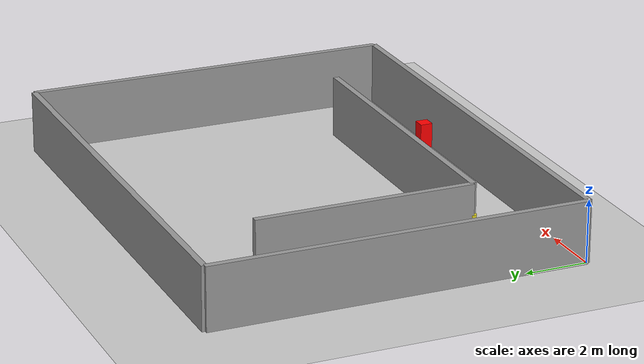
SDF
<?xml version="1.0" ?>
<sdf version="1.6">
  <world name="indoor_standard_world">
    <include><uri>model://sun</uri></include>
    <include><uri>model://ground_plane</uri></include>

    <model name='enclosure'>
      <static>1</static>
      <link name='link'>
        <visual name='north'><pose>7.5 12 1 0 0 0</pose><geometry><box><size>15 0.2 2</size></box></geometry>
          <material><script><uri>file://media/materials/scripts/gazebo.material</uri><name>Gazebo/Grey</name></script></material></visual>
        <collision name='north_c'><pose>7.5 12 1 0 0 0</pose><geometry><box><size>15 0.2 2</size></box></geometry></collision>

        <visual name='south'><pose>7.5 0 1 0 0 0</pose><geometry><box><size>15 0.2 2</size></box></geometry>
          <material><script><uri>file://media/materials/scripts/gazebo.material</uri><name>Gazebo/Grey</name></script></material></visual>
        <collision name='south_c'><pose>7.5 0 1 0 0 0</pose><geometry><box><size>15 0.2 2</size></box></geometry></collision>

        <visual name='west'><pose>0 6 1 0 0 1.57</pose><geometry><box><size>12 0.2 2</size></box></geometry>
          <material><script><uri>file://media/materials/scripts/gazebo.material</uri><name>Gazebo/Grey</name></script></material></visual>
        <collision name='west_c'><pose>0 6 1 0 0 1.57</pose><geometry><box><size>12 0.2 2</size></box></geometry></collision>

        <visual name='east'><pose>15 6 1 0 0 1.57</pose><geometry><box><size>12 0.2 2</size></box></geometry>
          <material><script><uri>file://media/materials/scripts/gazebo.material</uri><name>Gazebo/Grey</name></script></material></visual>
        <collision name='east_c'><pose>15 6 1 0 0 1.57</pose><geometry><box><size>12 0.2 2</size></box></geometry></collision>
      </link>
    </model>

    <model name='inner_L_wall'>
      <static>1</static>
      <pose>2.5 2.5 0 0 0 0</pose>
      <link name='link'>
        <visual name='v1'><pose>5 0 1 0 0 0</pose><geometry><box><size>10 0.2 2</size></box></geometry>
          <material><script><uri>file://media/materials/scripts/gazebo.material</uri><name>Gazebo/Grey</name></script></material></visual>
        <collision name='c1'><pose>5 0 1 0 0 0</pose><geometry><box><size>10 0.2 2</size></box></geometry></collision>

        <visual name='v2'><pose>0 3.5 1 0 0 1.57</pose><geometry><box><size>7 0.2 2</size></box></geometry>
          <material><script><uri>file://media/materials/scripts/gazebo.material</uri><name>Gazebo/Grey</name></script></material></visual>
        <collision name='c2'><pose>0 3.5 1 0 0 1.57</pose><geometry><box><size>7 0.2 2</size></box></geometry></collision>
      </link>
    </model>

    <model name='corner_pole'>
      <static>1</static>
      <pose>2.5 2.5 0 0 0 0</pose>
      <link name='pole'><pose>0 0 0.5 0 0 0</pose><visual name='v'><geometry><cylinder><radius>0.12</radius><length>1</length></cylinder></geometry>
        <material><script><uri>file://media/materials/scripts/gazebo.material</uri><name>Gazebo/Yellow</name></script></material></visual>
        <collision name='c'><geometry><cylinder><radius>0.12</radius><length>1</length></cylinder></geometry></collision>
      </link>
    </model>
    <model name="dynamic_box">
      <pose>10.0 0.5 0.5 0 0 0</pose>
      <link name="link">
        <inertial>
          <mass>1.0</mass>
          <inertia>
            <ixx>0.1</ixx><ixy>0</ixy><ixz>0</ixz><iyy>0.1</iyy><iyz>0</iyz><izz>0.1</izz>
          </inertia>
        </inertial>
        <collision name="collision">
          <geometry><box><size>0.4 0.4 1.0</size></box></geometry>
        </collision>
        <visual name="visual">
          <geometry><box><size>0.4 0.4 1.0</size></box></geometry>
          <material>
            <ambient>1 0 0 1</ambient>
            <diffuse>1 0 0 1</diffuse>
          </material>
        </visual>
        <kinematic>true</kinematic>
      </link>

      <plugin name="push_animate" filename="libgazebo_ros_planar_move.so">
        <ros>
          <namespace>/obstacle</namespace>
        </ros>
        <update_rate>20</update_rate>
        <robot_base_frame>link</robot_base_frame>
      </plugin>
    </model>

  </world>
</sdf>
